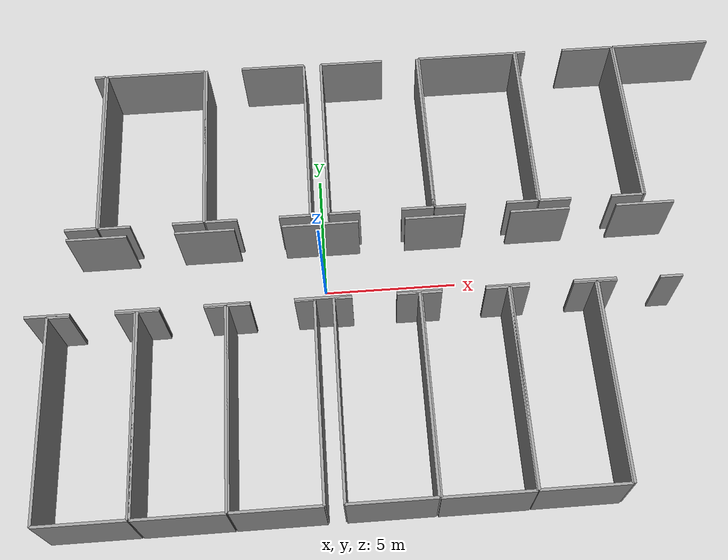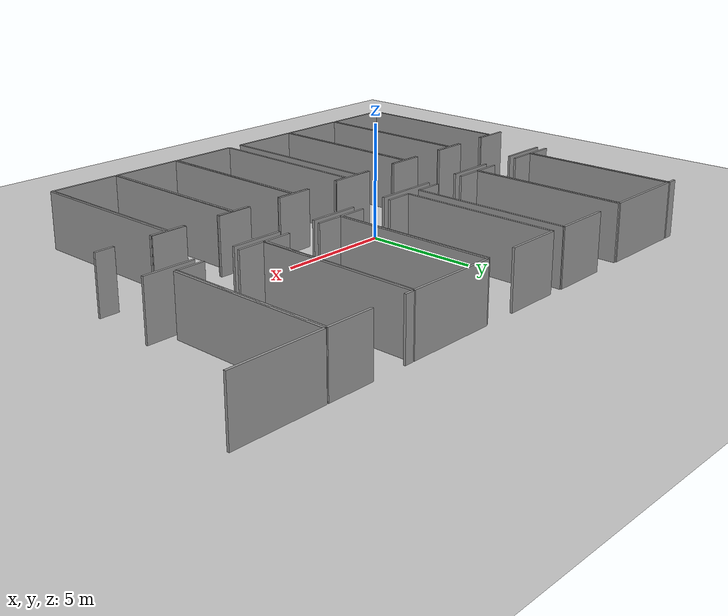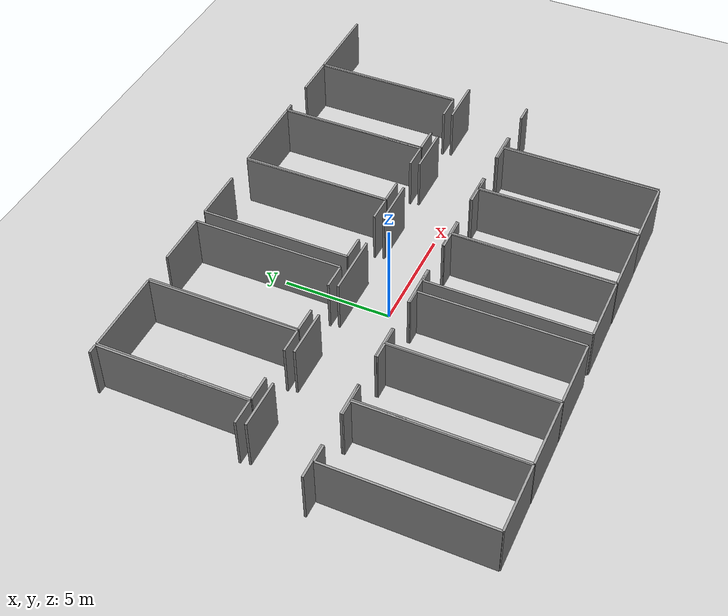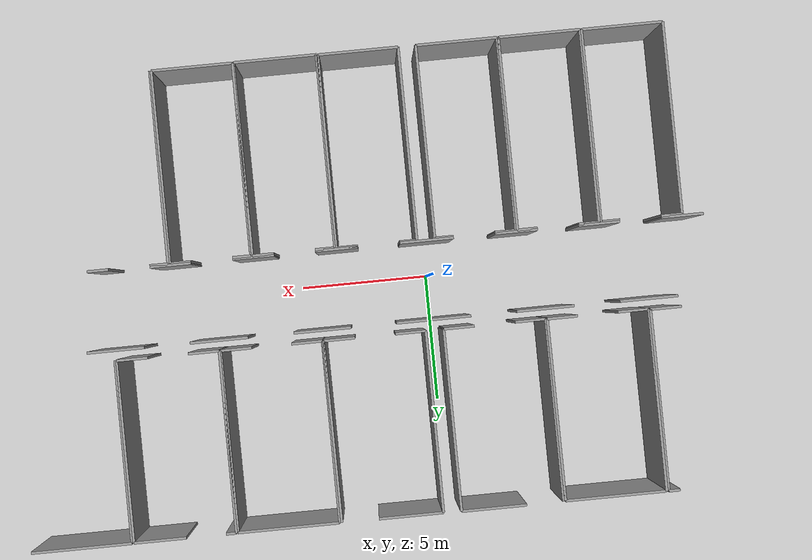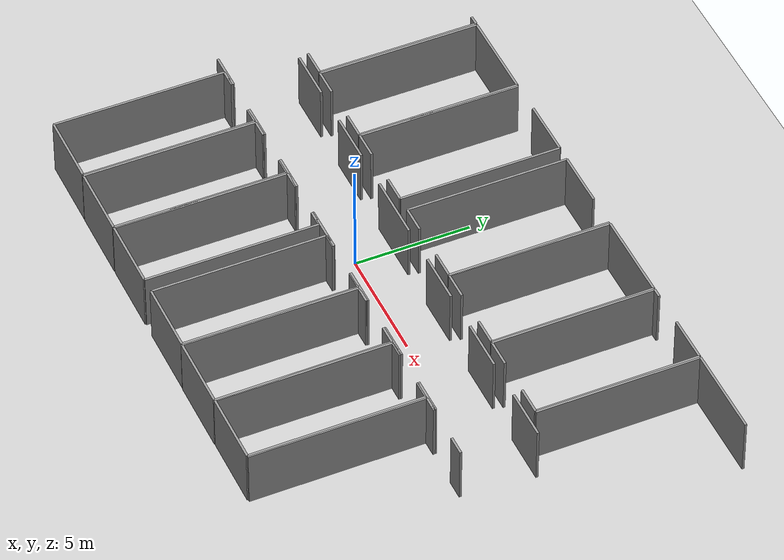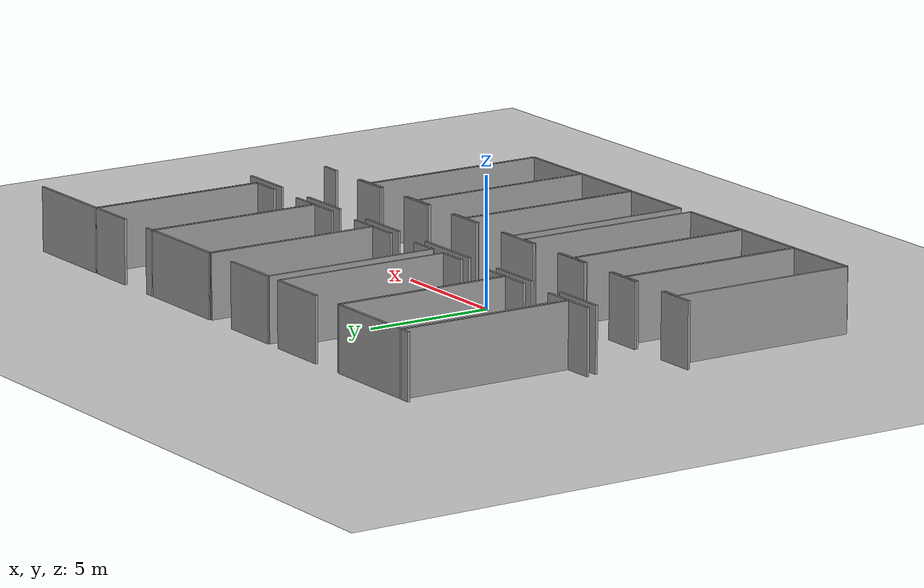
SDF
<sdf version="1.6">
 <world name="default">
  <model name="ground_plane">
   <static>1</static>
   <link name="link">
    <collision name="collision">
     <geometry><plane><normal>0 0 1</normal><size>100 100</size></plane></geometry>
     <surface><friction><ode><mu>100</mu><mu2>50</mu2></ode></friction></surface>
    </collision>
    <visual name="visual">
     <cast_shadows>0</cast_shadows>
     <geometry><plane><normal>0 0 1</normal><size>100 100</size></plane></geometry>
     <material>
      <script><uri>file://media/materials/scripts/gazebo.material</uri><name>Gazebo/Grey</name></script>
     </material>
    </visual>
   </link>
  </model>
  <model name="0510034868_A-40">
   <static>1</static>
   <link name="Wall_60">
    <collision name="Wall_60_Collision">
     <geometry><box><size>1.57736074178 0.1 2.5</size></box></geometry>
     <pose>0.78868037089 0 1.25 0 0 0</pose>
    </collision>
    <visual name="Wall_60_Visual">
     <pose>0.78868037089 0 1.25 0 0 0</pose>
     <geometry><box><size>1.57736074178 0.1 2.5</size></box></geometry>
     <material>
      <script><uri>file://media/materials/scripts/gazebo.material</uri><name>Gazebo/Grey</name></script>
      <ambient>1 1 1 1</ambient>
     </material>
    </visual>
    <pose>43.1426631211 -10.4740205754 0 0 0 3.14159265359</pose>
   </link>
   <link name="Wall_61">
    <collision name="Wall_61_Collision">
     <geometry><box><size>1.59678105187 0.1 2.5</size></box></geometry>
     <pose>0.798390525935 0 1.25 0 0 0</pose>
    </collision>
    <visual name="Wall_61_Visual">
     <pose>0.798390525935 0 1.25 0 0 0</pose>
     <geometry><box><size>1.59678105187 0.1 2.5</size></box></geometry>
     <material>
      <script><uri>file://media/materials/scripts/gazebo.material</uri><name>Gazebo/Grey</name></script>
      <ambient>1 1 1 1</ambient>
     </material>
    </visual>
    <pose>39.9600170086 -10.4740205754 0 0 0 3.14159265359</pose>
   </link>
   <link name="Wall_62">
    <collision name="Wall_62_Collision">
     <geometry><box><size>1.65580356293 0.1 2.5</size></box></geometry>
     <pose>0.827901781464 0 1.25 0 0 0</pose>
    </collision>
    <visual name="Wall_62_Visual">
     <pose>0.827901781464 0 1.25 0 0 0</pose>
     <geometry><box><size>1.65580356293 0.1 2.5</size></box></geometry>
     <material>
      <script><uri>file://media/materials/scripts/gazebo.material</uri><name>Gazebo/Grey</name></script>
      <ambient>1 1 1 1</ambient>
     </material>
    </visual>
    <pose>36.7755938744 -10.4740205754 0 0 0 3.14159265359</pose>
   </link>
   <link name="Wall_63">
    <collision name="Wall_63_Collision">
     <geometry><box><size>2.06642253771 0.1 2.5</size></box></geometry>
     <pose>1.03321126886 0 1.25 0 0 0</pose>
    </collision>
    <visual name="Wall_63_Visual">
     <pose>1.03321126886 0 1.25 0 0 0</pose>
     <geometry><box><size>2.06642253771 0.1 2.5</size></box></geometry>
     <material>
      <script><uri>file://media/materials/scripts/gazebo.material</uri><name>Gazebo/Grey</name></script>
      <ambient>1 1 1 1</ambient>
     </material>
    </visual>
    <pose>33.4936883992 -10.4740205754 0 0 0 3.14159265359</pose>
   </link>
   <link name="Wall_64">
    <collision name="Wall_64_Collision">
     <geometry><box><size>1.66608490356 0.1 2.5</size></box></geometry>
     <pose>0.833042451782 0 1.25 0 0 0</pose>
    </collision>
    <visual name="Wall_64_Visual">
     <pose>0.833042451782 0 1.25 0 0 0</pose>
     <geometry><box><size>1.66608490356 0.1 2.5</size></box></geometry>
     <material>
      <script><uri>file://media/materials/scripts/gazebo.material</uri><name>Gazebo/Grey</name></script>
      <ambient>1 1 1 1</ambient>
     </material>
    </visual>
    <pose>29.8421623817 -10.4740205754 0 0 0 3.14159265359</pose>
   </link>
   <link name="Wall_65">
    <collision name="Wall_65_Collision">
     <geometry><box><size>1.59906579423 0.1 2.5</size></box></geometry>
     <pose>0.799532897117 0 1.25 0 0 0</pose>
    </collision>
    <visual name="Wall_65_Visual">
     <pose>0.799532897117 0 1.25 0 0 0</pose>
     <geometry><box><size>1.59906579423 0.1 2.5</size></box></geometry>
     <material>
      <script><uri>file://media/materials/scripts/gazebo.material</uri><name>Gazebo/Grey</name></script>
      <ambient>1 1 1 1</ambient>
     </material>
    </visual>
    <pose>26.6110289591 -10.4740205754 0 0 0 3.14159265359</pose>
   </link>
   <link name="Wall_66">
    <collision name="Wall_66_Collision">
     <geometry><box><size>1.62330944931 0.1 2.5</size></box></geometry>
     <pose>0.811654724657 0 1.25 0 0 0</pose>
    </collision>
    <visual name="Wall_66_Visual">
     <pose>0.811654724657 0 1.25 0 0 0</pose>
     <geometry><box><size>1.62330944931 0.1 2.5</size></box></geometry>
     <material>
      <script><uri>file://media/materials/scripts/gazebo.material</uri><name>Gazebo/Grey</name></script>
      <ambient>1 1 1 1</ambient>
     </material>
    </visual>
    <pose>23.4098510475 -10.4740205754 0 0 0 3.14159265359</pose>
   </link>
   <link name="Wall_74">
    <collision name="Wall_74_Collision">
     <geometry><box><size>2.23625505341 0.1 2.5</size></box></geometry>
     <pose>1.1181275267 0 1.25 0 0 0</pose>
    </collision>
    <visual name="Wall_74_Visual">
     <pose>1.1181275267 0 1.25 0 0 0</pose>
     <geometry><box><size>2.23625505341 0.1 2.5</size></box></geometry>
     <material>
      <script><uri>file://media/materials/scripts/gazebo.material</uri><name>Gazebo/Grey</name></script>
      <ambient>1 1 1 1</ambient>
     </material>
    </visual>
    <pose>23.0733592694 -7.42388952001 0 0 0 0.0</pose>
   </link>
   <link name="Wall_75">
    <collision name="Wall_75_Collision">
     <geometry><box><size>2.21340762977 0.1 2.5</size></box></geometry>
     <pose>1.10670381489 0 1.25 0 0 0</pose>
    </collision>
    <visual name="Wall_75_Visual">
     <pose>1.10670381489 0 1.25 0 0 0</pose>
     <geometry><box><size>2.21340762977 0.1 2.5</size></box></geometry>
     <material>
      <script><uri>file://media/materials/scripts/gazebo.material</uri><name>Gazebo/Grey</name></script>
      <ambient>1 1 1 1</ambient>
     </material>
    </visual>
    <pose>27.078766493 -7.42388952001 0 0 0 0.0</pose>
   </link>
   <link name="Wall_76">
    <collision name="Wall_76_Collision">
     <geometry><box><size>2.86252832129 0.1 2.5</size></box></geometry>
     <pose>1.43126416064 0 1.25 0 0 0</pose>
    </collision>
    <visual name="Wall_76_Visual">
     <pose>1.43126416064 0 1.25 0 0 0</pose>
     <geometry><box><size>2.86252832129 0.1 2.5</size></box></geometry>
     <material>
      <script><uri>file://media/materials/scripts/gazebo.material</uri><name>Gazebo/Grey</name></script>
      <ambient>1 1 1 1</ambient>
     </material>
    </visual>
    <pose>31.0557413672 -7.42388952001 0 0 0 0.0</pose>
   </link>
   <link name="Wall_77">
    <collision name="Wall_77_Collision">
     <geometry><box><size>2.21696167345 0.1 2.5</size></box></geometry>
     <pose>1.10848083672 0 1.25 0 0 0</pose>
    </collision>
    <visual name="Wall_77_Visual">
     <pose>1.10848083672 0 1.25 0 0 0</pose>
     <geometry><box><size>2.21696167345 0.1 2.5</size></box></geometry>
     <material>
      <script><uri>file://media/materials/scripts/gazebo.material</uri><name>Gazebo/Grey</name></script>
      <ambient>1 1 1 1</ambient>
     </material>
    </visual>
    <pose>35.671301732 -7.42388952001 0 0 0 0.0</pose>
   </link>
   <link name="Wall_78">
    <collision name="Wall_78_Collision">
     <geometry><box><size>2.2366358438 0.1 2.5</size></box></geometry>
     <pose>1.1183179219 0 1.25 0 0 0</pose>
    </collision>
    <visual name="Wall_78_Visual">
     <pose>1.1183179219 0 1.25 0 0 0</pose>
     <geometry><box><size>2.2366358438 0.1 2.5</size></box></geometry>
     <material>
      <script><uri>file://media/materials/scripts/gazebo.material</uri><name>Gazebo/Grey</name></script>
      <ambient>1 1 1 1</ambient>
     </material>
    </visual>
    <pose>39.6541153922 -7.42388952001 0 0 0 0.0</pose>
   </link>
   <link name="Wall_79">
    <collision name="Wall_79_Collision">
     <geometry><box><size>2.19995303585 0.1 2.5</size></box></geometry>
     <pose>1.09997651793 0 1.25 0 0 0</pose>
    </collision>
    <visual name="Wall_79_Visual">
     <pose>1.09997651793 0 1.25 0 0 0</pose>
     <geometry><box><size>2.19995303585 0.1 2.5</size></box></geometry>
     <material>
      <script><uri>file://media/materials/scripts/gazebo.material</uri><name>Gazebo/Grey</name></script>
      <ambient>1 1 1 1</ambient>
     </material>
    </visual>
    <pose>43.6605380568 -7.42388952001 0 0 0 0.0</pose>
   </link>
   <link name="Wall_87">
    <collision name="Wall_87_Collision">
     <geometry><box><size>1.19809350943 0.1 2.5</size></box></geometry>
     <pose>0.599046754714 0 1.25 0 0 0</pose>
    </collision>
    <visual name="Wall_87_Visual">
     <pose>0.599046754714 0 1.25 0 0 0</pose>
     <geometry><box><size>1.19809350943 0.1 2.5</size></box></geometry>
     <material>
      <script><uri>file://media/materials/scripts/gazebo.material</uri><name>Gazebo/Grey</name></script>
      <ambient>1 1 1 1</ambient>
     </material>
    </visual>
    <pose>24.1814593157 -7.00298920459 0 0 0 3.14159265359</pose>
   </link>
   <link name="Wall_91">
    <collision name="Wall_91_Collision">
     <geometry><box><size>0.434227979209 0.1 2.5</size></box></geometry>
     <pose>0.217113989604 0 1.25 0 0 0</pose>
    </collision>
    <visual name="Wall_91_Visual">
     <pose>0.217113989604 0 1.25 0 0 0</pose>
     <geometry><box><size>0.434227979209 0.1 2.5</size></box></geometry>
     <material>
      <script><uri>file://media/materials/scripts/gazebo.material</uri><name>Gazebo/Grey</name></script>
      <ambient>1 1 1 1</ambient>
     </material>
    </visual>
    <pose>23.7344113932 -0.0154854760197 0 0 0 0.0</pose>
   </link>
   <link name="Wall_92">
    <collision name="Wall_92_Collision">
     <geometry><box><size>6.98751548891 0.1 2.5</size></box></geometry>
     <pose>3.49375774446 0 1.25 0 0 0</pose>
    </collision>
    <visual name="Wall_92_Visual">
     <pose>3.49375774446 0 1.25 0 0 0</pose>
     <geometry><box><size>6.98751548891 0.1 2.5</size></box></geometry>
     <material>
      <script><uri>file://media/materials/scripts/gazebo.material</uri><name>Gazebo/Grey</name></script>
      <ambient>1 1 1 1</ambient>
     </material>
    </visual>
    <pose>24.1686393725 -0.0154854760197 0 0 0 -1.56896163312</pose>
   </link>
   <link name="Wall_93">
    <collision name="Wall_93_Collision">
     <geometry><box><size>1.17258055303 0.1 2.5</size></box></geometry>
     <pose>0.586290276517 0 1.25 0 0 0</pose>
    </collision>
    <visual name="Wall_93_Visual">
     <pose>0.586290276517 0 1.25 0 0 0</pose>
     <geometry><box><size>1.17258055303 0.1 2.5</size></box></geometry>
     <material>
      <script><uri>file://media/materials/scripts/gazebo.material</uri><name>Gazebo/Grey</name></script>
      <ambient>1 1 1 1</ambient>
     </material>
    </visual>
    <pose>28.1600842816 -7.02164793389 0 0 0 3.14159265359</pose>
   </link>
   <link name="Wall_94">
    <collision name="Wall_94_Collision">
     <geometry><box><size>1.17981557052 0.1 2.5</size></box></geometry>
     <pose>0.58990778526 0 1.25 0 0 0</pose>
    </collision>
    <visual name="Wall_94_Visual">
     <pose>0.58990778526 0 1.25 0 0 0</pose>
     <geometry><box><size>1.17981557052 0.1 2.5</size></box></geometry>
     <material>
      <script><uri>file://media/materials/scripts/gazebo.material</uri><name>Gazebo/Grey</name></script>
      <ambient>1 1 1 1</ambient>
     </material>
    </visual>
    <pose>25.4290555764 -7.02164793389 0 0 0 3.14159265359</pose>
   </link>
   <link name="Wall_95">
    <collision name="Wall_95_Collision">
     <geometry><box><size>6.99829278973 0.1 2.5</size></box></geometry>
     <pose>3.49914639487 0 1.25 0 0 0</pose>
    </collision>
    <visual name="Wall_95_Visual">
     <pose>3.49914639487 0 1.25 0 0 0</pose>
     <geometry><box><size>6.99829278973 0.1 2.5</size></box></geometry>
     <material>
      <script><uri>file://media/materials/scripts/gazebo.material</uri><name>Gazebo/Grey</name></script>
      <ambient>1 1 1 1</ambient>
     </material>
    </visual>
    <pose>24.2492400058 -7.02164793389 0 0 0 1.57079632679</pose>
   </link>
   <link name="Wall_96">
    <collision name="Wall_96_Collision">
     <geometry><box><size>3.89612038054 0.1 2.5</size></box></geometry>
     <pose>1.94806019027 0 1.25 0 0 0</pose>
    </collision>
    <visual name="Wall_96_Visual">
     <pose>1.94806019027 0 1.25 0 0 0</pose>
     <geometry><box><size>3.89612038054 0.1 2.5</size></box></geometry>
     <material>
      <script><uri>file://media/materials/scripts/gazebo.material</uri><name>Gazebo/Grey</name></script>
      <ambient>1 1 1 1</ambient>
     </material>
    </visual>
    <pose>24.2492400058 -0.0233551441609 0 0 0 0.0</pose>
   </link>
   <link name="Wall_97">
    <collision name="Wall_97_Collision">
     <geometry><box><size>6.99830827872 0.1 2.5</size></box></geometry>
     <pose>3.49915413936 0 1.25 0 0 0</pose>
    </collision>
    <visual name="Wall_97_Visual">
     <pose>3.49915413936 0 1.25 0 0 0</pose>
     <geometry><box><size>6.99830827872 0.1 2.5</size></box></geometry>
     <material>
      <script><uri>file://media/materials/scripts/gazebo.material</uri><name>Gazebo/Grey</name></script>
      <ambient>1 1 1 1</ambient>
     </material>
    </visual>
    <pose>28.1453603864 -0.0233551441609 0 0 0 -1.56869240317</pose>
   </link>
   <link name="Wall_98">
    <collision name="Wall_98_Collision">
     <geometry><box><size>1.18565435656 0.1 2.5</size></box></geometry>
     <pose>0.59282717828 0 1.25 0 0 0</pose>
    </collision>
    <visual name="Wall_98_Visual">
     <pose>0.59282717828 0 1.25 0 0 0</pose>
     <geometry><box><size>1.18565435656 0.1 2.5</size></box></geometry>
     <material>
      <script><uri>file://media/materials/scripts/gazebo.material</uri><name>Gazebo/Grey</name></script>
      <ambient>1 1 1 1</ambient>
     </material>
    </visual>
    <pose>32.1511484004 -7.02088635311 0 0 0 3.14159265359</pose>
   </link>
   <link name="Wall_99">
    <collision name="Wall_99_Collision">
     <geometry><box><size>1.17676924737 0.1 2.5</size></box></geometry>
     <pose>0.588384623684 0 1.25 0 0 0</pose>
    </collision>
    <visual name="Wall_99_Visual">
     <pose>0.588384623684 0 1.25 0 0 0</pose>
     <geometry><box><size>1.17676924737 0.1 2.5</size></box></geometry>
     <material>
      <script><uri>file://media/materials/scripts/gazebo.material</uri><name>Gazebo/Grey</name></script>
      <ambient>1 1 1 1</ambient>
     </material>
    </visual>
    <pose>29.3970184112 -7.02088635311 0 0 0 3.14159265359</pose>
   </link>
   <link name="Wall_100">
    <collision name="Wall_100_Collision">
     <geometry><box><size>7.01047808234 0.1 2.5</size></box></geometry>
     <pose>3.50523904117 0 1.25 0 0 0</pose>
    </collision>
    <visual name="Wall_100_Visual">
     <pose>3.50523904117 0 1.25 0 0 0</pose>
     <geometry><box><size>7.01047808234 0.1 2.5</size></box></geometry>
     <material>
      <script><uri>file://media/materials/scripts/gazebo.material</uri><name>Gazebo/Grey</name></script>
      <ambient>1 1 1 1</ambient>
     </material>
    </visual>
    <pose>28.2202491638 -7.02088635311 0 0 0 1.57079632679</pose>
   </link>
   <link name="Wall_101">
    <collision name="Wall_101_Collision">
     <geometry><box><size>2.50534693178 0.1 2.5</size></box></geometry>
     <pose>1.25267346589 0 1.25 0 0 0</pose>
    </collision>
    <visual name="Wall_101_Visual">
     <pose>1.25267346589 0 1.25 0 0 0</pose>
     <geometry><box><size>2.50534693178 0.1 2.5</size></box></geometry>
     <material>
      <script><uri>file://media/materials/scripts/gazebo.material</uri><name>Gazebo/Grey</name></script>
      <ambient>1 1 1 1</ambient>
     </material>
    </visual>
    <pose>29.6402165428 -0.0104082707674 0 0 0 0.0</pose>
   </link>
   <link name="Wall_102">
    <collision name="Wall_102_Collision">
     <geometry><box><size>7.01048030697 0.1 2.5</size></box></geometry>
     <pose>3.50524015348 0 1.25 0 0 0</pose>
    </collision>
    <visual name="Wall_102_Visual">
     <pose>3.50524015348 0 1.25 0 0 0</pose>
     <geometry><box><size>7.01048030697 0.1 2.5</size></box></geometry>
     <material>
      <script><uri>file://media/materials/scripts/gazebo.material</uri><name>Gazebo/Grey</name></script>
      <ambient>1 1 1 1</ambient>
     </material>
    </visual>
    <pose>32.1455634746 -0.0104082707674 0 0 0 -1.56999967291</pose>
   </link>
   <link name="Wall_103">
    <collision name="Wall_103_Collision">
     <geometry><box><size>1.21586372781 0.1 2.5</size></box></geometry>
     <pose>0.607931863906 0 1.25 0 0 0</pose>
    </collision>
    <visual name="Wall_103_Visual">
     <pose>0.607931863906 0 1.25 0 0 0</pose>
     <geometry><box><size>1.21586372781 0.1 2.5</size></box></geometry>
     <material>
      <script><uri>file://media/materials/scripts/gazebo.material</uri><name>Gazebo/Grey</name></script>
      <ambient>1 1 1 1</ambient>
     </material>
    </visual>
    <pose>36.7914601408 -7.01250896444 0 0 0 3.14159265359</pose>
   </link>
   <link name="Wall_104">
    <collision name="Wall_104_Collision">
     <geometry><box><size>1.1683918587 0.1 2.5</size></box></geometry>
     <pose>0.584195929351 0 1.25 0 0 0</pose>
    </collision>
    <visual name="Wall_104_Visual">
     <pose>0.584195929351 0 1.25 0 0 0</pose>
     <geometry><box><size>1.1683918587 0.1 2.5</size></box></geometry>
     <material>
      <script><uri>file://media/materials/scripts/gazebo.material</uri><name>Gazebo/Grey</name></script>
      <ambient>1 1 1 1</ambient>
     </material>
    </visual>
    <pose>34.0094055227 -7.01250896444 0 0 0 3.14159265359</pose>
   </link>
   <link name="Wall_105">
    <collision name="Wall_105_Collision">
     <geometry><box><size>6.98280731371 0.1 2.5</size></box></geometry>
     <pose>3.49140365686 0 1.25 0 0 0</pose>
    </collision>
    <visual name="Wall_105_Visual">
     <pose>3.49140365686 0 1.25 0 0 0</pose>
     <geometry><box><size>6.98280731371 0.1 2.5</size></box></geometry>
     <material>
      <script><uri>file://media/materials/scripts/gazebo.material</uri><name>Gazebo/Grey</name></script>
      <ambient>1 1 1 1</ambient>
     </material>
    </visual>
    <pose>32.841013664 -7.01250896444 0 0 0 1.57079632679</pose>
   </link>
   <link name="Wall_106">
    <collision name="Wall_106_Collision">
     <geometry><box><size>2.47881853434 0.1 2.5</size></box></geometry>
     <pose>1.23940926717 0 1.25 0 0 0</pose>
    </collision>
    <visual name="Wall_106_Visual">
     <pose>1.23940926717 0 1.25 0 0 0</pose>
     <geometry><box><size>2.47881853434 0.1 2.5</size></box></geometry>
     <material>
      <script><uri>file://media/materials/scripts/gazebo.material</uri><name>Gazebo/Grey</name></script>
      <ambient>1 1 1 1</ambient>
     </material>
    </visual>
    <pose>32.841013664 -0.0297016507264 0 0 0 0.0</pose>
   </link>
   <link name="Wall_107">
    <collision name="Wall_107_Collision">
     <geometry><box><size>6.98291675153 0.1 2.5</size></box></geometry>
     <pose>3.49145837577 0 1.25 0 0 0</pose>
    </collision>
    <visual name="Wall_107_Visual">
     <pose>3.49145837577 0 1.25 0 0 0</pose>
     <geometry><box><size>6.98291675153 0.1 2.5</size></box></geometry>
     <material>
      <script><uri>file://media/materials/scripts/gazebo.material</uri><name>Gazebo/Grey</name></script>
      <ambient>1 1 1 1</ambient>
     </material>
    </visual>
    <pose>36.7523656603 -0.0297016507264 0 0 0 -1.56519770861</pose>
   </link>
   <link name="Wall_108">
    <collision name="Wall_108_Collision">
     <geometry><box><size>1.19200086312 0.1 2.5</size></box></geometry>
     <pose>0.596000431562 0 1.25 0 0 0</pose>
    </collision>
    <visual name="Wall_108_Visual">
     <pose>0.596000431562 0 1.25 0 0 0</pose>
     <geometry><box><size>1.19200086312 0.1 2.5</size></box></geometry>
     <material>
      <script><uri>file://media/materials/scripts/gazebo.material</uri><name>Gazebo/Grey</name></script>
      <ambient>1 1 1 1</ambient>
     </material>
    </visual>
    <pose>40.7514263774 -7.01441291641 0 0 0 3.14159265359</pose>
   </link>
   <link name="Wall_109">
    <collision name="Wall_109_Collision">
     <geometry><box><size>1.1833696142 0.1 2.5</size></box></geometry>
     <pose>0.591684807098 0 1.25 0 0 0</pose>
    </collision>
    <visual name="Wall_109_Visual">
     <pose>0.591684807098 0 1.25 0 0 0</pose>
     <geometry><box><size>1.1833696142 0.1 2.5</size></box></geometry>
     <material>
      <script><uri>file://media/materials/scripts/gazebo.material</uri><name>Gazebo/Grey</name></script>
      <ambient>1 1 1 1</ambient>
     </material>
    </visual>
    <pose>38.0115125629 -7.01441291641 0 0 0 3.14159265359</pose>
   </link>
   <link name="Wall_110">
    <collision name="Wall_110_Collision">
     <geometry><box><size>6.98877302989 0.1 2.5</size></box></geometry>
     <pose>3.49438651494 0 1.25 0 0 0</pose>
    </collision>
    <visual name="Wall_110_Visual">
     <pose>3.49438651494 0 1.25 0 0 0</pose>
     <geometry><box><size>6.98877302989 0.1 2.5</size></box></geometry>
     <material>
      <script><uri>file://media/materials/scripts/gazebo.material</uri><name>Gazebo/Grey</name></script>
      <ambient>1 1 1 1</ambient>
     </material>
    </visual>
    <pose>36.8281429487 -7.01441291641 0 0 0 1.57079632679</pose>
   </link>
   <link name="Wall_111">
    <collision name="Wall_111_Collision">
     <geometry><box><size>3.91249436748 0.1 2.5</size></box></geometry>
     <pose>1.95624718374 0 1.25 0 0 0</pose>
    </collision>
    <visual name="Wall_111_Visual">
     <pose>1.95624718374 0 1.25 0 0 0</pose>
     <geometry><box><size>3.91249436748 0.1 2.5</size></box></geometry>
     <material>
      <script><uri>file://media/materials/scripts/gazebo.material</uri><name>Gazebo/Grey</name></script>
      <ambient>1 1 1 1</ambient>
     </material>
    </visual>
    <pose>36.8281429487 -0.0256398865245 0 0 0 0.0</pose>
   </link>
   <link name="Wall_112">
    <collision name="Wall_112_Collision">
     <geometry><box><size>6.9887813578 0.1 2.5</size></box></geometry>
     <pose>3.4943906789 0 1.25 0 0 0</pose>
    </collision>
    <visual name="Wall_112_Visual">
     <pose>3.4943906789 0 1.25 0 0 0</pose>
     <geometry><box><size>6.9887813578 0.1 2.5</size></box></geometry>
     <material>
      <script><uri>file://media/materials/scripts/gazebo.material</uri><name>Gazebo/Grey</name></script>
      <ambient>1 1 1 1</ambient>
     </material>
    </visual>
    <pose>40.7406373162 -0.0256398865245 0 0 0 -1.56925255759</pose>
   </link>
   <link name="Wall_113">
    <collision name="Wall_113_Collision">
     <geometry><box><size>1.20190141337 0.1 2.5</size></box></geometry>
     <pose>0.600950706684 0 1.25 0 0 0</pose>
    </collision>
    <visual name="Wall_113_Visual">
     <pose>0.600950706684 0 1.25 0 0 0</pose>
     <geometry><box><size>1.20190141337 0.1 2.5</size></box></geometry>
     <material>
      <script><uri>file://media/materials/scripts/gazebo.material</uri><name>Gazebo/Grey</name></script>
      <ambient>1 1 1 1</ambient>
     </material>
    </visual>
    <pose>44.7617838761 -7.02088635311 0 0 0 3.14159265359</pose>
   </link>
   <link name="Wall_114">
    <collision name="Wall_114_Collision">
     <geometry><box><size>1.20380536534 0.1 2.5</size></box></geometry>
     <pose>0.601902682668 0 1.25 0 0 0</pose>
    </collision>
    <visual name="Wall_114_Visual">
     <pose>0.601902682668 0 1.25 0 0 0</pose>
     <geometry><box><size>1.20380536534 0.1 2.5</size></box></geometry>
     <material>
      <script><uri>file://media/materials/scripts/gazebo.material</uri><name>Gazebo/Grey</name></script>
      <ambient>1 1 1 1</ambient>
     </material>
    </visual>
    <pose>42.009684769 -7.02088635311 0 0 0 3.14159265359</pose>
   </link>
   <link name="Wall_115">
    <collision name="Wall_115_Collision">
     <geometry><box><size>7.0026084142 0.1 2.5</size></box></geometry>
     <pose>3.5013042071 0 1.25 0 0 0</pose>
    </collision>
    <visual name="Wall_115_Visual">
     <pose>3.5013042071 0 1.25 0 0 0</pose>
     <geometry><box><size>7.0026084142 0.1 2.5</size></box></geometry>
     <material>
      <script><uri>file://media/materials/scripts/gazebo.material</uri><name>Gazebo/Grey</name></script>
      <ambient>1 1 1 1</ambient>
     </material>
    </visual>
    <pose>40.8058794037 -7.02088635311 0 0 0 1.57079632679</pose>
   </link>
   <link name="Wall_116">
    <collision name="Wall_116_Collision">
     <geometry><box><size>0.394371917978 0.1 2.5</size></box></geometry>
     <pose>0.197185958989 0 1.25 0 0 0</pose>
    </collision>
    <visual name="Wall_116_Visual">
     <pose>0.197185958989 0 1.25 0 0 0</pose>
     <geometry><box><size>0.394371917978 0.1 2.5</size></box></geometry>
     <material>
      <script><uri>file://media/materials/scripts/gazebo.material</uri><name>Gazebo/Grey</name></script>
      <ambient>1 1 1 1</ambient>
     </material>
    </visual>
    <pose>40.8058794037 -0.0182779389085 0 0 0 0.0</pose>
   </link>
   <link name="Wall_117">
    <collision name="Wall_117_Collision">
     <geometry><box><size>2.01844294808 0.1 2.5</size></box></geometry>
     <pose>1.00922147404 0 1.25 0 0 0</pose>
    </collision>
    <visual name="Wall_117_Visual">
     <pose>1.00922147404 0 1.25 0 0 0</pose>
     <geometry><box><size>2.01844294808 0.1 2.5</size></box></geometry>
     <material>
      <script><uri>file://media/materials/scripts/gazebo.material</uri><name>Gazebo/Grey</name></script>
      <ambient>1 1 1 1</ambient>
     </material>
    </visual>
    <pose>42.7260784301 -0.0182779389085 0 0 0 0.0</pose>
   </link>
   <link name="Wall_118">
    <collision name="Wall_118_Collision">
     <geometry><box><size>7.00262969151 0.1 2.5</size></box></geometry>
     <pose>3.50131484576 0 1.25 0 0 0</pose>
    </collision>
    <visual name="Wall_118_Visual">
     <pose>3.50131484576 0 1.25 0 0 0</pose>
     <geometry><box><size>7.00262969151 0.1 2.5</size></box></geometry>
     <material>
      <script><uri>file://media/materials/scripts/gazebo.material</uri><name>Gazebo/Grey</name></script>
      <ambient>1 1 1 1</ambient>
     </material>
    </visual>
    <pose>44.7445213782 -0.0182779389085 0 0 0 -1.56833117926</pose>
   </link>
   <link name="Wall_121">
    <collision name="Wall_121_Collision">
     <geometry><box><size>7.02037863258 0.1 2.5</size></box></geometry>
     <pose>3.51018931629 0 1.25 0 0 0</pose>
    </collision>
    <visual name="Wall_121_Visual">
     <pose>3.51018931629 0 1.25 0 0 0</pose>
     <geometry><box><size>7.02037863258 0.1 2.5</size></box></geometry>
     <material>
      <script><uri>file://media/materials/scripts/gazebo.material</uri><name>Gazebo/Grey</name></script>
      <ambient>1 1 1 1</ambient>
     </material>
    </visual>
    <pose>44.8201717365 -7.03078690335 0 0 0 1.57079632679</pose>
   </link>
   <link name="Wall_122">
    <collision name="Wall_122_Collision">
     <geometry><box><size>3.88456973859 0.1 2.5</size></box></geometry>
     <pose>1.94228486929 0 1.25 0 0 0</pose>
    </collision>
    <visual name="Wall_122_Visual">
     <pose>1.94228486929 0 1.25 0 0 0</pose>
     <geometry><box><size>3.88456973859 0.1 2.5</size></box></geometry>
     <material>
      <script><uri>file://media/materials/scripts/gazebo.material</uri><name>Gazebo/Grey</name></script>
      <ambient>1 1 1 1</ambient>
     </material>
    </visual>
    <pose>44.8201717365 -0.0104082707674 0 0 0 0.0</pose>
   </link>
   <link name="Wall_129">
    <collision name="Wall_129_Collision">
     <geometry><box><size>3.14774032634 0.1 2.5</size></box></geometry>
     <pose>1.57387016317 0 1.25 0 0 0</pose>
    </collision>
    <visual name="Wall_129_Visual">
     <pose>1.57387016317 0 1.25 0 0 0</pose>
     <geometry><box><size>3.14774032634 0.1 2.5</size></box></geometry>
     <material>
      <script><uri>file://media/materials/scripts/gazebo.material</uri><name>Gazebo/Grey</name></script>
      <ambient>1 1 1 1</ambient>
     </material>
    </visual>
    <pose>25.7512042496 -17.9793992397 0 0 0 3.14159265359</pose>
   </link>
   <link name="Wall_130">
    <collision name="Wall_130_Collision">
     <geometry><box><size>7.44242131918 0.1 2.5</size></box></geometry>
     <pose>3.72121065959 0 1.25 0 0 0</pose>
    </collision>
    <visual name="Wall_130_Visual">
     <pose>3.72121065959 0 1.25 0 0 0</pose>
     <geometry><box><size>7.44242131918 0.1 2.5</size></box></geometry>
     <material>
      <script><uri>file://media/materials/scripts/gazebo.material</uri><name>Gazebo/Grey</name></script>
      <ambient>1 1 1 1</ambient>
     </material>
    </visual>
    <pose>22.6034639233 -17.9793992397 0 0 0 1.57079632679</pose>
   </link>
   <link name="Wall_131">
    <collision name="Wall_131_Collision">
     <geometry><box><size>0.808164146046 0.1 2.5</size></box></geometry>
     <pose>0.404082073023 0 1.25 0 0 0</pose>
    </collision>
    <visual name="Wall_131_Visual">
     <pose>0.404082073023 0 1.25 0 0 0</pose>
     <geometry><box><size>0.808164146046 0.1 2.5</size></box></geometry>
     <material>
      <script><uri>file://media/materials/scripts/gazebo.material</uri><name>Gazebo/Grey</name></script>
      <ambient>1 1 1 1</ambient>
     </material>
    </visual>
    <pose>22.6034639233 -10.5369779205 0 0 0 0.0</pose>
   </link>
   <link name="Wall_132">
    <collision name="Wall_132_Collision">
     <geometry><box><size>0.724390259382 0.1 2.5</size></box></geometry>
     <pose>0.362195129691 0 1.25 0 0 0</pose>
    </collision>
    <visual name="Wall_132_Visual">
     <pose>0.362195129691 0 1.25 0 0 0</pose>
     <geometry><box><size>0.724390259382 0.1 2.5</size></box></geometry>
     <material>
      <script><uri>file://media/materials/scripts/gazebo.material</uri><name>Gazebo/Grey</name></script>
      <ambient>1 1 1 1</ambient>
     </material>
    </visual>
    <pose>25.0119631649 -10.5369779205 0 0 0 0.0</pose>
   </link>
   <link name="Wall_133">
    <collision name="Wall_133_Collision">
     <geometry><box><size>7.44243613606 0.1 2.5</size></box></geometry>
     <pose>3.72121806803 0 1.25 0 0 0</pose>
    </collision>
    <visual name="Wall_133_Visual">
     <pose>3.72121806803 0 1.25 0 0 0</pose>
     <geometry><box><size>7.44243613606 0.1 2.5</size></box></geometry>
     <material>
      <script><uri>file://media/materials/scripts/gazebo.material</uri><name>Gazebo/Grey</name></script>
      <ambient>1 1 1 1</ambient>
     </material>
    </visual>
    <pose>25.7363534243 -10.5369779205 0 0 0 -1.56880090017</pose>
   </link>
   <link name="Wall_134">
    <collision name="Wall_134_Collision">
     <geometry><box><size>3.15687929579 0.1 2.5</size></box></geometry>
     <pose>1.5784396479 0 1.25 0 0 0</pose>
    </collision>
    <visual name="Wall_134_Visual">
     <pose>1.5784396479 0 1.25 0 0 0</pose>
     <geometry><box><size>3.15687929579 0.1 2.5</size></box></geometry>
     <material>
      <script><uri>file://media/materials/scripts/gazebo.material</uri><name>Gazebo/Grey</name></script>
      <ambient>1 1 1 1</ambient>
     </material>
    </visual>
    <pose>28.9655828949 -17.987395838 0 0 0 3.14159265359</pose>
   </link>
   <link name="Wall_135">
    <collision name="Wall_135_Collision">
     <geometry><box><size>7.45752600481 0.1 2.5</size></box></geometry>
     <pose>3.72876300241 0 1.25 0 0 0</pose>
    </collision>
    <visual name="Wall_135_Visual">
     <pose>3.72876300241 0 1.25 0 0 0</pose>
     <geometry><box><size>7.45752600481 0.1 2.5</size></box></geometry>
     <material>
      <script><uri>file://media/materials/scripts/gazebo.material</uri><name>Gazebo/Grey</name></script>
      <ambient>1 1 1 1</ambient>
     </material>
    </visual>
    <pose>25.8087035991 -17.987395838 0 0 0 1.57079632679</pose>
   </link>
   <link name="Wall_136">
    <collision name="Wall_136_Collision">
     <geometry><box><size>0.783666630703 0.1 2.5</size></box></geometry>
     <pose>0.391833315352 0 1.25 0 0 0</pose>
    </collision>
    <visual name="Wall_136_Visual">
     <pose>0.391833315352 0 1.25 0 0 0</pose>
     <geometry><box><size>0.783666630703 0.1 2.5</size></box></geometry>
     <material>
      <script><uri>file://media/materials/scripts/gazebo.material</uri><name>Gazebo/Grey</name></script>
      <ambient>1 1 1 1</ambient>
     </material>
    </visual>
    <pose>25.8087035991 -10.5298698332 0 0 0 0.0</pose>
   </link>
   <link name="Wall_137">
    <collision name="Wall_137_Collision">
     <geometry><box><size>0.767800364289 0.1 2.5</size></box></geometry>
     <pose>0.383900182145 0 1.25 0 0 0</pose>
    </collision>
    <visual name="Wall_137_Visual">
     <pose>0.383900182145 0 1.25 0 0 0</pose>
     <geometry><box><size>0.767800364289 0.1 2.5</size></box></geometry>
     <material>
      <script><uri>file://media/materials/scripts/gazebo.material</uri><name>Gazebo/Grey</name></script>
      <ambient>1 1 1 1</ambient>
     </material>
    </visual>
    <pose>28.1890243515 -10.5298698332 0 0 0 0.0</pose>
   </link>
   <link name="Wall_138">
    <collision name="Wall_138_Collision">
     <geometry><box><size>7.45753114765 0.1 2.5</size></box></geometry>
     <pose>3.72876557382 0 1.25 0 0 0</pose>
    </collision>
    <visual name="Wall_138_Visual">
     <pose>3.72876557382 0 1.25 0 0 0</pose>
     <geometry><box><size>7.45753114765 0.1 2.5</size></box></geometry>
     <material>
      <script><uri>file://media/materials/scripts/gazebo.material</uri><name>Gazebo/Grey</name></script>
      <ambient>1 1 1 1</ambient>
     </material>
    </visual>
    <pose>28.9568247158 -10.5298698332 0 0 0 -1.56962191922</pose>
   </link>
   <link name="Wall_139">
    <collision name="Wall_139_Collision">
     <geometry><box><size>3.13809363636 0.1 2.5</size></box></geometry>
     <pose>1.56904681818 0 1.25 0 0 0</pose>
    </collision>
    <visual name="Wall_139_Visual">
     <pose>1.56904681818 0 1.25 0 0 0</pose>
     <geometry><box><size>3.13809363636 0.1 2.5</size></box></geometry>
     <material>
      <script><uri>file://media/materials/scripts/gazebo.material</uri><name>Gazebo/Grey</name></script>
      <ambient>1 1 1 1</ambient>
     </material>
    </visual>
    <pose>32.159525789 -17.987395838 0 0 0 3.14159265359</pose>
   </link>
   <link name="Wall_140">
    <collision name="Wall_140_Collision">
     <geometry><box><size>7.46120697862 0.1 2.5</size></box></geometry>
     <pose>3.73060348931 0 1.25 0 0 0</pose>
    </collision>
    <visual name="Wall_140_Visual">
     <pose>3.73060348931 0 1.25 0 0 0</pose>
     <geometry><box><size>7.46120697862 0.1 2.5</size></box></geometry>
     <material>
      <script><uri>file://media/materials/scripts/gazebo.material</uri><name>Gazebo/Grey</name></script>
      <ambient>1 1 1 1</ambient>
     </material>
    </visual>
    <pose>29.0214321527 -17.987395838 0 0 0 1.57079632679</pose>
   </link>
   <link name="Wall_141">
    <collision name="Wall_141_Collision">
     <geometry><box><size>0.80956037749 0.1 2.5</size></box></geometry>
     <pose>0.404780188745 0 1.25 0 0 0</pose>
    </collision>
    <visual name="Wall_141_Visual">
     <pose>0.404780188745 0 1.25 0 0 0</pose>
     <geometry><box><size>0.80956037749 0.1 2.5</size></box></geometry>
     <material>
      <script><uri>file://media/materials/scripts/gazebo.material</uri><name>Gazebo/Grey</name></script>
      <ambient>1 1 1 1</ambient>
     </material>
    </visual>
    <pose>29.0214321527 -10.5261888593 0 0 0 0.0</pose>
   </link>
   <link name="Wall_142">
    <collision name="Wall_142_Collision">
     <geometry><box><size>0.717662962422 0.1 2.5</size></box></geometry>
     <pose>0.358831481211 0 1.25 0 0 0</pose>
    </collision>
    <visual name="Wall_142_Visual">
     <pose>0.358831481211 0 1.25 0 0 0</pose>
     <geometry><box><size>0.717662962422 0.1 2.5</size></box></geometry>
     <material>
      <script><uri>file://media/materials/scripts/gazebo.material</uri><name>Gazebo/Grey</name></script>
      <ambient>1 1 1 1</ambient>
     </material>
    </visual>
    <pose>31.4334854379 -10.5261888593 0 0 0 0.0</pose>
   </link>
   <link name="Wall_143">
    <collision name="Wall_143_Collision">
     <geometry><box><size>7.46121168165 0.1 2.5</size></box></geometry>
     <pose>3.73060584083 0 1.25 0 0 0</pose>
    </collision>
    <visual name="Wall_143_Visual">
     <pose>3.73060584083 0 1.25 0 0 0</pose>
     <geometry><box><size>7.46121168165 0.1 2.5</size></box></geometry>
     <material>
      <script><uri>file://media/materials/scripts/gazebo.material</uri><name>Gazebo/Grey</name></script>
      <ambient>1 1 1 1</ambient>
     </material>
    </visual>
    <pose>32.1511484004 -10.5261888593 0 0 0 -1.56967353458</pose>
   </link>
   <link name="Wall_144">
    <collision name="Wall_144_Collision">
     <geometry><box><size>3.10610724327 0.1 2.5</size></box></geometry>
     <pose>1.55305362163 0 1.25 0 0 0</pose>
    </collision>
    <visual name="Wall_144_Visual">
     <pose>1.55305362163 0 1.25 0 0 0</pose>
     <geometry><box><size>3.10610724327 0.1 2.5</size></box></geometry>
     <material>
      <script><uri>file://media/materials/scripts/gazebo.material</uri><name>Gazebo/Grey</name></script>
      <ambient>1 1 1 1</ambient>
     </material>
    </visual>
    <pose>35.9471209073 -17.987395838 0 0 0 3.14159265359</pose>
   </link>
   <link name="Wall_145">
    <collision name="Wall_145_Collision">
     <geometry><box><size>7.46933050702 0.1 2.5</size></box></geometry>
     <pose>3.73466525351 0 1.25 0 0 0</pose>
    </collision>
    <visual name="Wall_145_Visual">
     <pose>3.73466525351 0 1.25 0 0 0</pose>
     <geometry><box><size>7.46933050702 0.1 2.5</size></box></geometry>
     <material>
      <script><uri>file://media/materials/scripts/gazebo.material</uri><name>Gazebo/Grey</name></script>
      <ambient>1 1 1 1</ambient>
     </material>
    </visual>
    <pose>32.841013664 -17.987395838 0 0 0 1.57079632679</pose>
   </link>
   <link name="Wall_146">
    <collision name="Wall_146_Collision">
     <geometry><box><size>0.667652490687 0.1 2.5</size></box></geometry>
     <pose>0.333826245343 0 1.25 0 0 0</pose>
    </collision>
    <visual name="Wall_146_Visual">
     <pose>0.333826245343 0 1.25 0 0 0</pose>
     <geometry><box><size>0.667652490687 0.1 2.5</size></box></geometry>
     <material>
      <script><uri>file://media/materials/scripts/gazebo.material</uri><name>Gazebo/Grey</name></script>
      <ambient>1 1 1 1</ambient>
     </material>
    </visual>
    <pose>32.841013664 -10.5180653309 0 0 0 0.0</pose>
   </link>
   <link name="Wall_147">
    <collision name="Wall_147_Collision">
     <geometry><box><size>0.827330595874 0.1 2.5</size></box></geometry>
     <pose>0.413665297937 0 1.25 0 0 0</pose>
    </collision>
    <visual name="Wall_147_Visual">
     <pose>0.413665297937 0 1.25 0 0 0</pose>
     <geometry><box><size>0.827330595874 0.1 2.5</size></box></geometry>
     <material>
      <script><uri>file://media/materials/scripts/gazebo.material</uri><name>Gazebo/Grey</name></script>
      <ambient>1 1 1 1</ambient>
     </material>
    </visual>
    <pose>35.1270253289 -10.5180653309 0 0 0 0.0</pose>
   </link>
   <link name="Wall_148">
    <collision name="Wall_148_Collision">
     <geometry><box><size>7.46933401105 0.1 2.5</size></box></geometry>
     <pose>3.73466700552 0 1.25 0 0 0</pose>
    </collision>
    <visual name="Wall_148_Visual">
     <pose>3.73466700552 0 1.25 0 0 0</pose>
     <geometry><box><size>7.46933401105 0.1 2.5</size></box></geometry>
     <material>
      <script><uri>file://media/materials/scripts/gazebo.material</uri><name>Gazebo/Grey</name></script>
      <ambient>1 1 1 1</ambient>
     </material>
    </visual>
    <pose>35.9543559248 -10.5180653309 0 0 0 -1.57176495648</pose>
   </link>
   <link name="Wall_149">
    <collision name="Wall_149_Collision">
     <geometry><box><size>3.20092405136 0.1 2.5</size></box></geometry>
     <pose>1.60046202568 0 1.25 0 0 0</pose>
    </collision>
    <visual name="Wall_149_Visual">
     <pose>1.60046202568 0 1.25 0 0 0</pose>
     <geometry><box><size>3.20092405136 0.1 2.5</size></box></geometry>
     <material>
      <script><uri>file://media/materials/scripts/gazebo.material</uri><name>Gazebo/Grey</name></script>
      <ambient>1 1 1 1</ambient>
     </material>
    </visual>
    <pose>39.2082098409 -18.0019928031 0 0 0 3.14159265359</pose>
   </link>
   <link name="Wall_150">
    <collision name="Wall_150_Collision">
     <geometry><box><size>7.47136138912 0.1 2.5</size></box></geometry>
     <pose>3.73568069456 0 1.25 0 0 0</pose>
    </collision>
    <visual name="Wall_150_Visual">
     <pose>3.73568069456 0 1.25 0 0 0</pose>
     <geometry><box><size>7.47136138912 0.1 2.5</size></box></geometry>
     <material>
      <script><uri>file://media/materials/scripts/gazebo.material</uri><name>Gazebo/Grey</name></script>
      <ambient>1 1 1 1</ambient>
     </material>
    </visual>
    <pose>36.0072857895 -18.0019928031 0 0 0 1.57079632679</pose>
   </link>
   <link name="Wall_151">
    <collision name="Wall_151_Collision">
     <geometry><box><size>0.757645953785 0.1 2.5</size></box></geometry>
     <pose>0.378822976892 0 1.25 0 0 0</pose>
    </collision>
    <visual name="Wall_151_Visual">
     <pose>0.378822976892 0 1.25 0 0 0</pose>
     <geometry><box><size>0.757645953785 0.1 2.5</size></box></geometry>
     <material>
      <script><uri>file://media/materials/scripts/gazebo.material</uri><name>Gazebo/Grey</name></script>
      <ambient>1 1 1 1</ambient>
     </material>
    </visual>
    <pose>36.0072857895 -10.5306314139 0 0 0 0.0</pose>
   </link>
   <link name="Wall_152">
    <collision name="Wall_152_Collision">
     <geometry><box><size>0.826315154823 0.1 2.5</size></box></geometry>
     <pose>0.413157577412 0 1.25 0 0 0</pose>
    </collision>
    <visual name="Wall_152_Visual">
     <pose>0.413157577412 0 1.25 0 0 0</pose>
     <geometry><box><size>0.826315154823 0.1 2.5</size></box></geometry>
     <material>
      <script><uri>file://media/materials/scripts/gazebo.material</uri><name>Gazebo/Grey</name></script>
      <ambient>1 1 1 1</ambient>
     </material>
    </visual>
    <pose>38.3604434939 -10.5306314139 0 0 0 0.0</pose>
   </link>
   <link name="Wall_153">
    <collision name="Wall_153_Collision">
     <geometry><box><size>7.47139218356 0.1 2.5</size></box></geometry>
     <pose>3.73569609178 0 1.25 0 0 0</pose>
    </collision>
    <visual name="Wall_153_Visual">
     <pose>3.73569609178 0 1.25 0 0 0</pose>
     <geometry><box><size>7.47139218356 0.1 2.5</size></box></geometry>
     <material>
      <script><uri>file://media/materials/scripts/gazebo.material</uri><name>Gazebo/Grey</name></script>
      <ambient>1 1 1 1</ambient>
     </material>
    </visual>
    <pose>39.1867586487 -10.5306314139 0 0 0 -1.5679252124</pose>
   </link>
   <link name="Wall_154">
    <collision name="Wall_154_Collision">
     <geometry><box><size>3.13771284596 0.1 2.5</size></box></geometry>
     <pose>1.56885642298 0 1.25 0 0 0</pose>
    </collision>
    <visual name="Wall_154_Visual">
     <pose>1.56885642298 0 1.25 0 0 0</pose>
     <geometry><box><size>3.13771284596 0.1 2.5</size></box></geometry>
     <material>
      <script><uri>file://media/materials/scripts/gazebo.material</uri><name>Gazebo/Grey</name></script>
      <ambient>1 1 1 1</ambient>
     </material>
    </visual>
    <pose>42.3869211193 -17.9909498816 0 0 0 3.14159265359</pose>
   </link>
   <link name="Wall_155">
    <collision name="Wall_155_Collision">
     <geometry><box><size>7.45562205284 0.1 2.5</size></box></geometry>
     <pose>3.72781102642 0 1.25 0 0 0</pose>
    </collision>
    <visual name="Wall_155_Visual">
     <pose>3.72781102642 0 1.25 0 0 0</pose>
     <geometry><box><size>7.45562205284 0.1 2.5</size></box></geometry>
     <material>
      <script><uri>file://media/materials/scripts/gazebo.material</uri><name>Gazebo/Grey</name></script>
      <ambient>1 1 1 1</ambient>
     </material>
    </visual>
    <pose>39.2492082733 -17.9909498816 0 0 0 1.57079632679</pose>
   </link>
   <link name="Wall_156">
    <collision name="Wall_156_Collision">
     <geometry><box><size>0.699892744039 0.1 2.5</size></box></geometry>
     <pose>0.34994637202 0 1.25 0 0 0</pose>
    </collision>
    <visual name="Wall_156_Visual">
     <pose>0.34994637202 0 1.25 0 0 0</pose>
     <geometry><box><size>0.699892744039 0.1 2.5</size></box></geometry>
     <material>
      <script><uri>file://media/materials/scripts/gazebo.material</uri><name>Gazebo/Grey</name></script>
      <ambient>1 1 1 1</ambient>
     </material>
    </visual>
    <pose>39.2492082733 -10.5353278288 0 0 0 0.0</pose>
   </link>
   <link name="Wall_157">
    <collision name="Wall_157_Collision">
     <geometry><box><size>0.805498613288 0.1 2.5</size></box></geometry>
     <pose>0.402749306644 0 1.25 0 0 0</pose>
    </collision>
    <visual name="Wall_157_Visual">
     <pose>0.402749306644 0 1.25 0 0 0</pose>
     <geometry><box><size>0.805498613288 0.1 2.5</size></box></geometry>
     <material>
      <script><uri>file://media/materials/scripts/gazebo.material</uri><name>Gazebo/Grey</name></script>
      <ambient>1 1 1 1</ambient>
     </material>
    </visual>
    <pose>41.5642869383 -10.5353278288 0 0 0 0.0</pose>
   </link>
   <link name="Wall_158">
    <collision name="Wall_158_Collision">
     <geometry><box><size>7.45564174451 0.1 2.5</size></box></geometry>
     <pose>3.72782087226 0 1.25 0 0 0</pose>
    </collision>
    <visual name="Wall_158_Visual">
     <pose>3.72782087226 0 1.25 0 0 0</pose>
     <geometry><box><size>7.45564174451 0.1 2.5</size></box></geometry>
     <material>
      <script><uri>file://media/materials/scripts/gazebo.material</uri><name>Gazebo/Grey</name></script>
      <ambient>1 1 1 1</ambient>
     </material>
    </visual>
    <pose>42.3697855515 -10.5353278288 0 0 0 -1.56849798905</pose>
   </link>
   <link name="Wall_160">
    <collision name="Wall_160_Collision">
     <geometry><box><size>7.46323786072 0.1 2.5</size></box></geometry>
     <pose>3.73161893036 0 1.25 0 0 0</pose>
    </collision>
    <visual name="Wall_160_Visual">
     <pose>3.73161893036 0 1.25 0 0 0</pose>
     <geometry><box><size>7.46323786072 0.1 2.5</size></box></geometry>
     <material>
      <script><uri>file://media/materials/scripts/gazebo.material</uri><name>Gazebo/Grey</name></script>
      <ambient>1 1 1 1</ambient>
     </material>
    </visual>
    <pose>42.4423895867 -17.9956462965 0 0 0 1.57079632679</pose>
   </link>
   <link name="Wall_161">
    <collision name="Wall_161_Collision">
     <geometry><box><size>0.708397062837 0.1 2.5</size></box></geometry>
     <pose>0.354198531418 0 1.25 0 0 0</pose>
    </collision>
    <visual name="Wall_161_Visual">
     <pose>0.354198531418 0 1.25 0 0 0</pose>
     <geometry><box><size>0.708397062837 0.1 2.5</size></box></geometry>
     <material>
      <script><uri>file://media/materials/scripts/gazebo.material</uri><name>Gazebo/Grey</name></script>
      <ambient>1 1 1 1</ambient>
     </material>
    </visual>
    <pose>42.4423895867 -10.5324084358 0 0 0 0.0</pose>
   </link>
   <link name="Wall_162">
    <collision name="Wall_162_Collision">
     <geometry><box><size>0.827330595874 0.1 2.5</size></box></geometry>
     <pose>0.413665297937 0 1.25 0 0 0</pose>
    </collision>
    <visual name="Wall_162_Visual">
     <pose>0.413665297937 0 1.25 0 0 0</pose>
     <geometry><box><size>0.827330595874 0.1 2.5</size></box></geometry>
     <material>
      <script><uri>file://media/materials/scripts/gazebo.material</uri><name>Gazebo/Grey</name></script>
      <ambient>1 1 1 1</ambient>
     </material>
    </visual>
    <pose>44.7428712865 -10.5324084358 0 0 0 0.0</pose>
   </link>
   <pose>-32.5 9.12692346748 0 0 0 0</pose>
  </model>
 </world>
</sdf>
